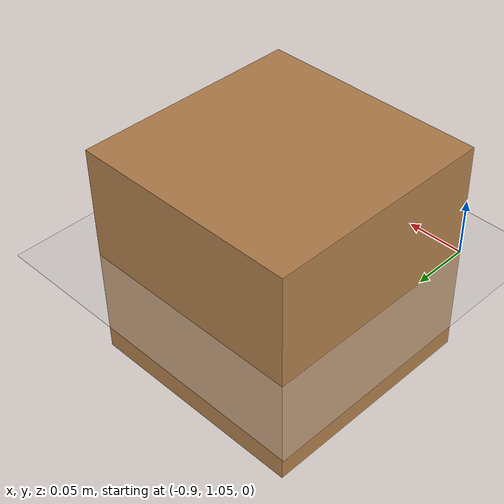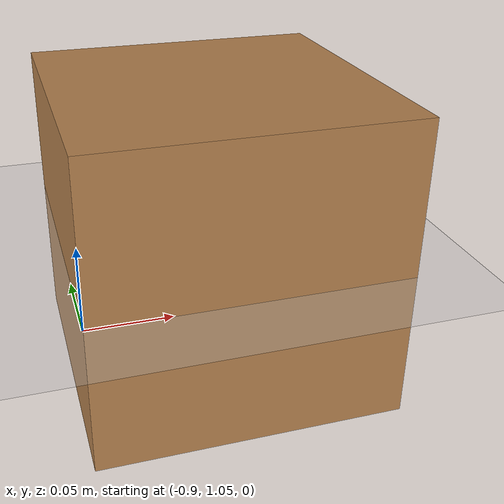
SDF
<sdf version="1.4">
 <world name="default">
  <light name="sun" type="directional">
   <pose>0 0 10 0 -0 0</pose>
   <diffuse>0.8 0.8 0.8 1</diffuse>
   <specular>0.2 0.2 0.2 1</specular>
   <attenuation>
    <range>1000</range>
    <constant>0.9</constant>
    <linear>0.01</linear>
    <quadratic>0.001</quadratic>
   </attenuation>
   <direction>0.5 0.1 -0.9</direction>
  </light>
  <model name="ground_plane">
   <static>1</static>
   <link name="link">
    <collision name="collision">
     <geometry><plane><normal>0 0 1</normal><size>100 100</size></plane></geometry>
     <surface><friction><ode><mu>100</mu><mu2>50</mu2></ode></friction></surface>
    </collision>
    <visual name="visual">
     <cast_shadows>0</cast_shadows>
     <geometry><plane><normal>0 0 1</normal><size>100 100</size></plane></geometry>
     <material>
      <script><uri>file://media/materials/scripts/gazebo.material</uri><name>Gazebo/Grey</name></script>
     </material>
    </visual>
    <velocity_decay><linear>0</linear><angular>0</angular></velocity_decay>
   </link>
  </model>
  <physics type="ode">
   <max_step_size>0.001</max_step_size>
   <real_time_factor>1</real_time_factor>
   <real_time_update_rate>1000</real_time_update_rate>
   <gravity>0 0 -9.8</gravity>
  </physics>
  <scene><ambient>0.4 0.4 0.4 1</ambient><background>0.7 0.7 0.7 1</background><shadows>1</shadows></scene>
  <model name="box">
   <static>0</static>
   <pose>-0.8 1.150 0.0 0 -0 0</pose>
   <link name="pal">
    <inertial>
     <inertia><ixx>20.05</ixx><ixy>0</ixy><ixz>0</ixz><iyy>20.05</iyy><iyz>0</iyz><izz>20.05</izz></inertia>
     <mass>4</mass>
    </inertial>
    <collision name="box">
     <geometry><box><size>0.20 0.2 0.20</size></box></geometry>
     <surface><friction><ode><mu>100.01</mu><mu2>100.01</mu2></ode></friction></surface>
    </collision>
    <visual name="visual1">
     <geometry><box><size>0.20 0.2 0.20</size></box></geometry>
     <material>
      <script><uri>file://media/materials/scripts/gazebo.material</uri><name>Gazebo/Wood</name></script>
     </material>
    </visual>
    <velocity_decay><linear>0</linear><angular>0</angular></velocity_decay>
   </link>
  </model>
  <model name="palette1">
   <static>0</static>
   <pose>0.0 0.0 0.80 0 -0 1.5707</pose>
   <link name="pal">
    <inertial>
     <pose>1.150 0.8 0.0 0 -0 0</pose>
     <inertia><ixx>2.05</ixx><ixy>0</ixy><ixz>0</ixz><iyy>2.05</iyy><iyz>0</iyz><izz>2.05</izz></inertia>
     <mass>15</mass>
    </inertial>
    <collision name="collision0">
     <pose>1.150 0.8 0.12 0 -0 0</pose>
     <geometry><box><size>2.3 1.6 0.04</size></box></geometry>
    </collision>
    <collision name="collision1">
     <pose>0.05 0.8 0.1 0 -0 0</pose>
     <geometry><box><size>0.1 1.6 0.20</size></box></geometry>
    </collision>
    <collision name="collision2">
     <pose>2.25 0.8 0.1 0 -0 0</pose>
     <geometry><box><size>0.1 1.6 0.20</size></box></geometry>
    </collision>
    <visual name="visual">
     <geometry><mesh><uri>file:///home/qiu/Palette.stl</uri><scale>0.02 0.02 0.02</scale></mesh></geometry>
     <material>
      <script><uri>file://media/materials/scripts/gazebo.material</uri><name>Gazebo/Wood</name></script>
     </material>
     <cast_shadows>0</cast_shadows>
    </visual>
    <velocity_decay><linear>0</linear><angular>0</angular></velocity_decay>
   </link>
  </model>
 </world>
</sdf>
